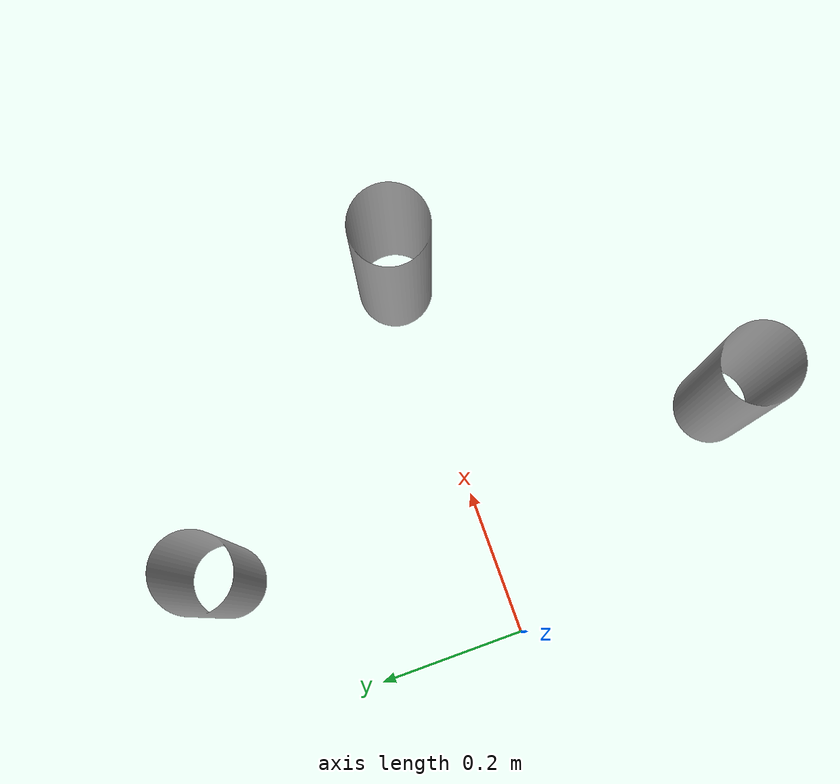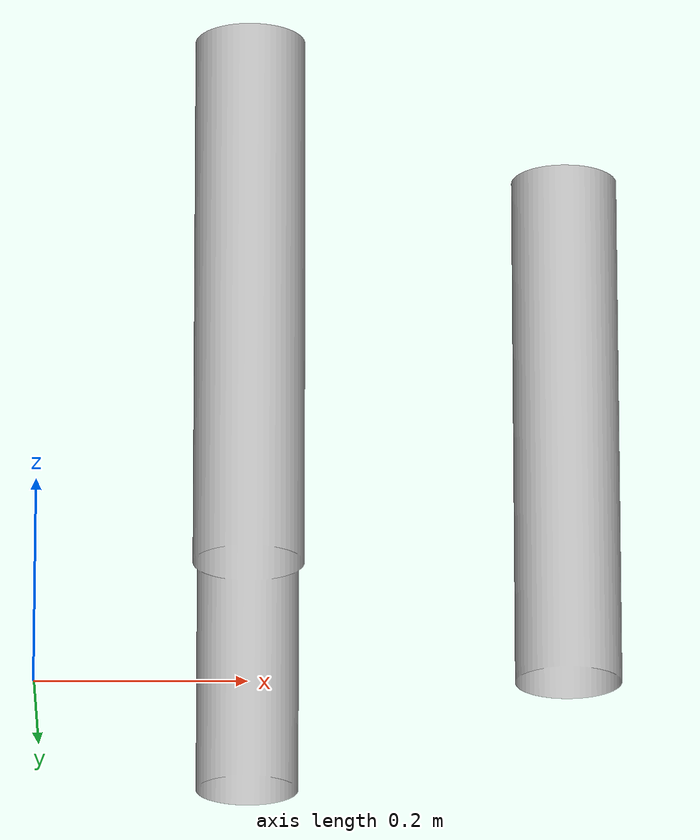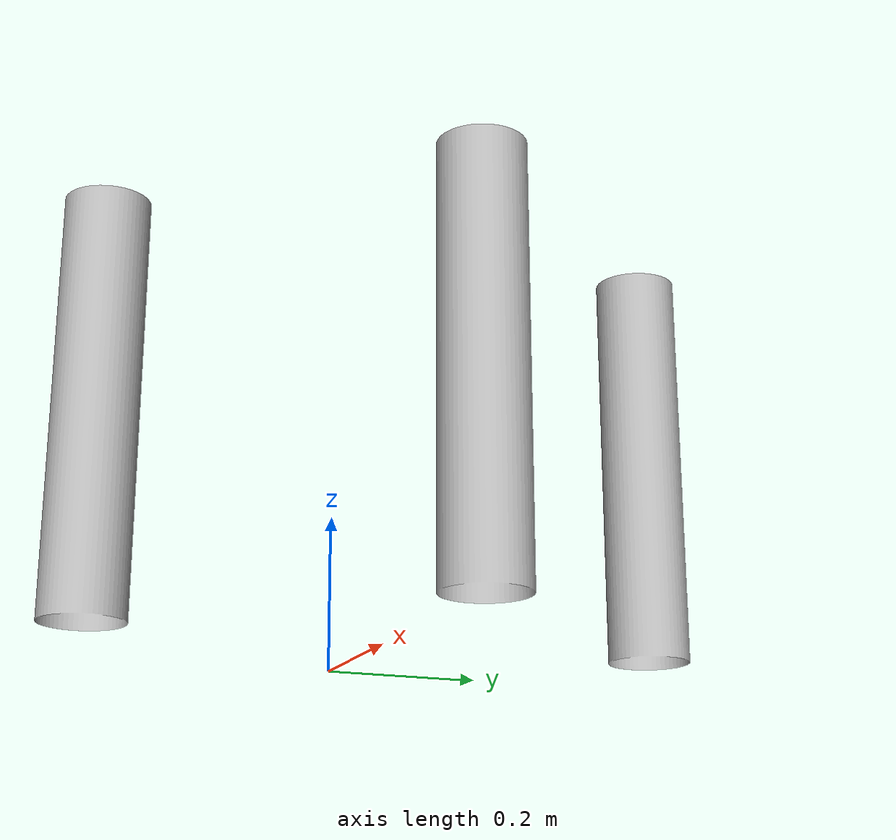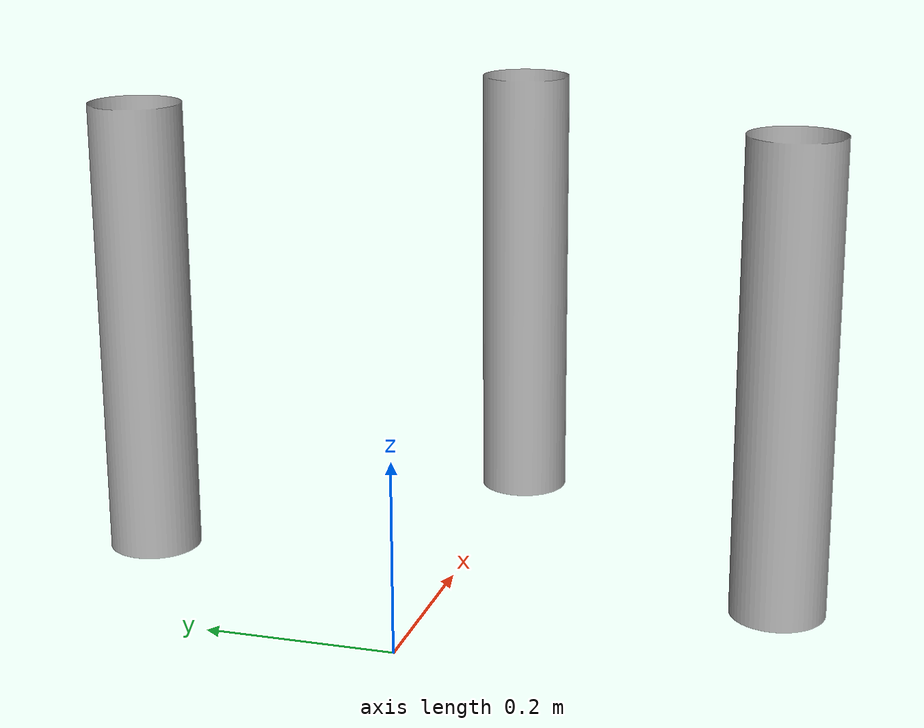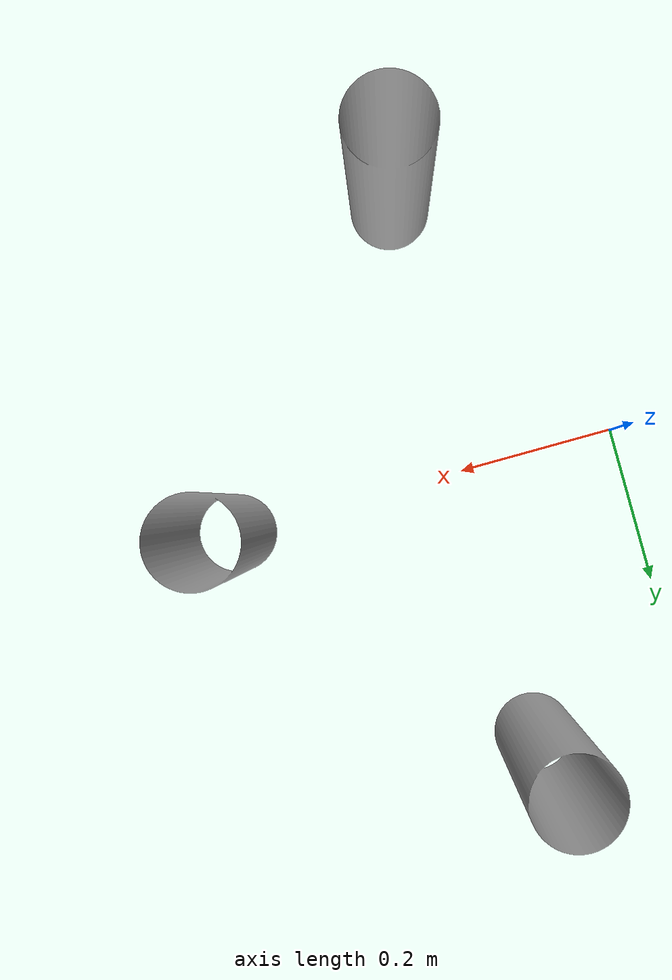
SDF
<?xml version="1.0" ?>
<sdf version="1.10">

    <model name="my_object">
        <pose>0 0 0 0 0 0</pose>
        <static>true</static>
        <link name="link">
            <visual name="visual">
            <geometry>
                <mesh>
                <uri>model://moveit_cpp_send_cmds/meshes/cylinder_update.stl</uri>
                <scale>0.001 0.001 0.001</scale> <!-- Adjust scaling if needed -->
                </mesh>
            </geometry>
            </visual>
            <collision name="collision">
            <geometry>
                <mesh>
                <uri>model://moveit_cpp_send_cmds/meshes/cylinder_update.stl</uri>
                <scale>0.001 0.001 0.001</scale>
                </mesh>
            </geometry>
            </collision>
            <inertial>
            <mass>1.0</mass>
            <inertia>
                <ixx>0.1</ixx>
                <iyy>0.1</iyy>
                <izz>0.1</izz>
            </inertia>
            </inertial>
        </link>
    </model>

</sdf>
